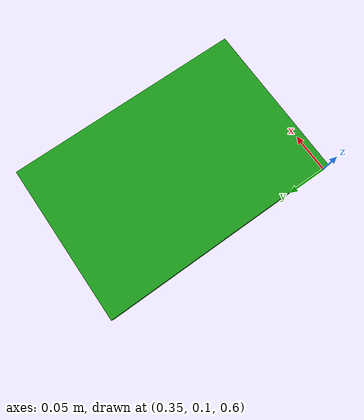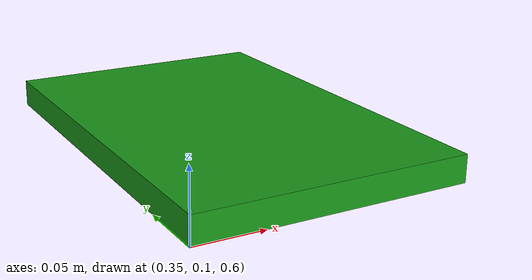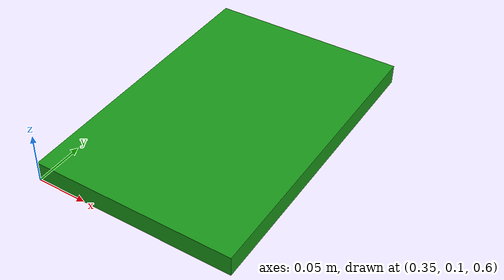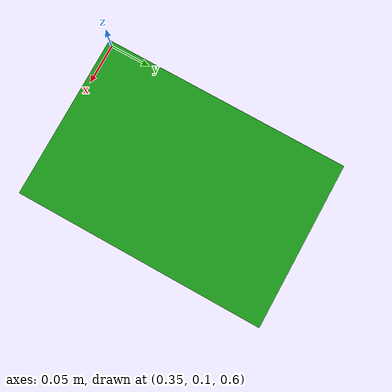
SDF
<?xml version="1.0" ?>
<sdf version="1.9">
  <model name="place_tray">
    <static>true</static>
    <pose>0.45 0.25 0.61 0 0 0</pose>
    <link name="tray_link">
      <collision name="collision">
        <geometry><box><size>0.2 0.3 0.02</size></box></geometry>
      </collision>
      <visual name="visual">
        <geometry><box><size>0.2 0.3 0.02</size></box></geometry>
        <material>
          <ambient>0.1 0.6 0.1 1</ambient>
          <diffuse>0.1 0.6 0.1 1</diffuse>
        </material>
      </visual>
    </link>
  </model>
</sdf>
